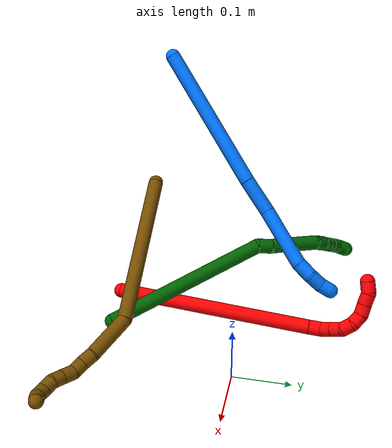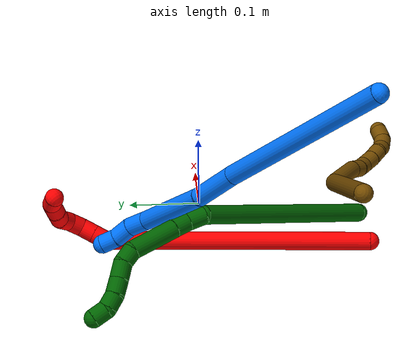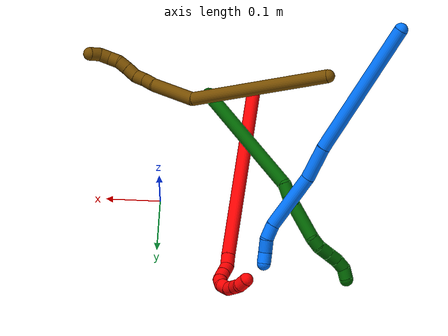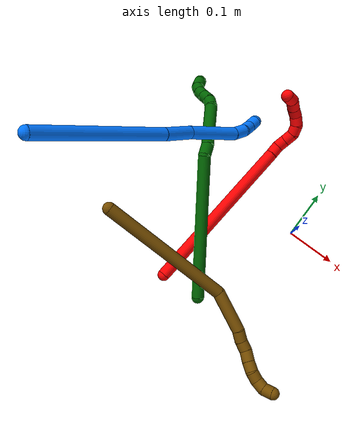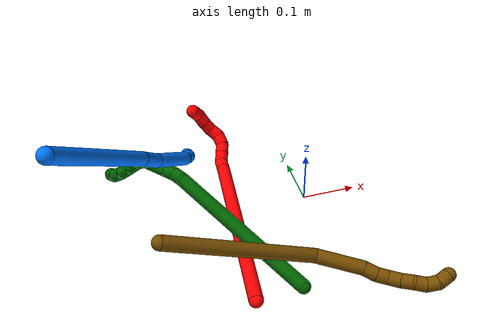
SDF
<sdf version="1.7">
 <world name="default">
  <model name="2">
   <static>0</static>
   <link name="2">
    <collision name="collision-cylinder-e_1_1_4">
     <pose>0.013882 0.130103 -0.106642 -2.25742 0.082336 -0.173611</pose>
     <geometry><cylinder><radius>0.0125</radius><length>0.337592</length></cylinder></geometry>
     <surface>
      <friction><ode><mu>1.16</mu><mu2>1.16</mu2><slip1>0</slip1><slip2>0</slip2></ode></friction>
      <contact><ode><kp>1e+06</kp><kd>1</kd><max_vel>0</max_vel><min_depth>0.001</min_depth></ode></contact>
     </surface>
    </collision>
    <visual name="visual-cylinder-e_1_1_4">
     <pose>0.013882 0.130103 -0.106642 -2.25742 0.082336 -0.173611</pose>
     <geometry><cylinder><radius>0.0125</radius><length>0.337592</length></cylinder></geometry>
     <material><ambient>1 0 0 1</ambient></material>
    </visual>
    <collision name="collision-cylinder-e_2_4_5">
     <pose>0.028958 0.269001 -0.219979 -2.22136 0.10755 -0.216372</pose>
     <geometry><cylinder><radius>0.0125</radius><length>0.022235</length></cylinder></geometry>
     <surface>
      <friction><ode><mu>1.16</mu><mu2>1.16</mu2><slip1>0</slip1><slip2>0</slip2></ode></friction>
      <contact><ode><kp>1e+06</kp><kd>1</kd><max_vel>0</max_vel><min_depth>0.001</min_depth></ode></contact>
     </surface>
    </collision>
    <visual name="visual-cylinder-e_2_4_5">
     <pose>0.028958 0.269001 -0.219979 -2.22136 0.10755 -0.216372</pose>
     <geometry><cylinder><radius>0.0125</radius><length>0.022235</length></cylinder></geometry>
     <material><ambient>1 0 0 1</ambient></material>
    </visual>
    <collision name="collision-cylinder-e_3_5_6">
     <pose>0.032056 0.281694 -0.235747 -2.73589 0.190541 -0.869856</pose>
     <geometry><cylinder><radius>0.0125</radius><length>0.020113</length></cylinder></geometry>
     <surface>
      <friction><ode><mu>1.16</mu><mu2>1.16</mu2><slip1>0</slip1><slip2>0</slip2></ode></friction>
      <contact><ode><kp>1e+06</kp><kd>1</kd><max_vel>0</max_vel><min_depth>0.001</min_depth></ode></contact>
     </surface>
    </collision>
    <visual name="visual-cylinder-e_3_5_6">
     <pose>0.032056 0.281694 -0.235747 -2.73589 0.190541 -0.869856</pose>
     <geometry><cylinder><radius>0.0125</radius><length>0.020113</length></cylinder></geometry>
     <material><ambient>1 0 0 1</ambient></material>
    </visual>
    <collision name="collision-cylinder-e_4_6_7">
     <pose>0.035963 0.28949 -0.253838 -2.73352 0.201073 -0.907237</pose>
     <geometry><cylinder><radius>0.0125</radius><length>0.020053</length></cylinder></geometry>
     <surface>
      <friction><ode><mu>1.16</mu><mu2>1.16</mu2><slip1>0</slip1><slip2>0</slip2></ode></friction>
      <contact><ode><kp>1e+06</kp><kd>1</kd><max_vel>0</max_vel><min_depth>0.001</min_depth></ode></contact>
     </surface>
    </collision>
    <visual name="visual-cylinder-e_4_6_7">
     <pose>0.035963 0.28949 -0.253838 -2.73352 0.201073 -0.907237</pose>
     <geometry><cylinder><radius>0.0125</radius><length>0.020053</length></cylinder></geometry>
     <material><ambient>1 0 0 1</ambient></material>
    </visual>
    <collision name="collision-cylinder-e_5_7_8">
     <pose>0.044314 0.297583 -0.269345 -2.56784 0.687741 -1.76338</pose>
     <geometry><cylinder><radius>0.0125</radius><length>0.020001</length></cylinder></geometry>
     <surface>
      <friction><ode><mu>1.16</mu><mu2>1.16</mu2><slip1>0</slip1><slip2>0</slip2></ode></friction>
      <contact><ode><kp>1e+06</kp><kd>1</kd><max_vel>0</max_vel><min_depth>0.001</min_depth></ode></contact>
     </surface>
    </collision>
    <visual name="visual-cylinder-e_5_7_8">
     <pose>0.044314 0.297583 -0.269345 -2.56784 0.687741 -1.76338</pose>
     <geometry><cylinder><radius>0.0125</radius><length>0.020001</length></cylinder></geometry>
     <material><ambient>1 0 0 1</ambient></material>
    </visual>
    <collision name="collision-cylinder-e_6_8_9">
     <pose>0.059586 0.305675 -0.278121 -2.10133 1.10209 -1.6412</pose>
     <geometry><cylinder><radius>0.0125</radius><length>0.020005</length></cylinder></geometry>
     <surface>
      <friction><ode><mu>1.16</mu><mu2>1.16</mu2><slip1>0</slip1><slip2>0</slip2></ode></friction>
      <contact><ode><kp>1e+06</kp><kd>1</kd><max_vel>0</max_vel><min_depth>0.001</min_depth></ode></contact>
     </surface>
    </collision>
    <visual name="visual-cylinder-e_6_8_9">
     <pose>0.059586 0.305675 -0.278121 -2.10133 1.10209 -1.6412</pose>
     <geometry><cylinder><radius>0.0125</radius><length>0.020005</length></cylinder></geometry>
     <material><ambient>1 0 0 1</ambient></material>
    </visual>
    <collision name="collision-cylinder-e_7_9_10">
     <pose>0.078252 0.308703 -0.282489 2.74596 1.34328 2.6476</pose>
     <geometry><cylinder><radius>0.0125</radius><length>0.02</length></cylinder></geometry>
     <surface>
      <friction><ode><mu>1.16</mu><mu2>1.16</mu2><slip1>0</slip1><slip2>0</slip2></ode></friction>
      <contact><ode><kp>1e+06</kp><kd>1</kd><max_vel>0</max_vel><min_depth>0.001</min_depth></ode></contact>
     </surface>
    </collision>
    <visual name="visual-cylinder-e_7_9_10">
     <pose>0.078252 0.308703 -0.282489 2.74596 1.34328 2.6476</pose>
     <geometry><cylinder><radius>0.0125</radius><length>0.02</length></cylinder></geometry>
     <material><ambient>1 0 0 1</ambient></material>
    </visual>
    <collision name="collision-cylinder-e_8_10_11">
     <pose>0.097389 0.30676 -0.287824 2.82291 1.22113 2.69011</pose>
     <geometry><cylinder><radius>0.0125</radius><length>0.02</length></cylinder></geometry>
     <surface>
      <friction><ode><mu>1.16</mu><mu2>1.16</mu2><slip1>0</slip1><slip2>0</slip2></ode></friction>
      <contact><ode><kp>1e+06</kp><kd>1</kd><max_vel>0</max_vel><min_depth>0.001</min_depth></ode></contact>
     </surface>
    </collision>
    <visual name="visual-cylinder-e_8_10_11">
     <pose>0.097389 0.30676 -0.287824 2.82291 1.22113 2.69011</pose>
     <geometry><cylinder><radius>0.0125</radius><length>0.02</length></cylinder></geometry>
     <material><ambient>1 0 0 1</ambient></material>
    </visual>
    <collision name="collision-cylinder-e_9_11_2">
     <pose>0.115936 0.301713 -0.290403 1.40278 1.15589 1.0071</pose>
     <geometry><cylinder><radius>0.0125</radius><length>0.02</length></cylinder></geometry>
     <surface>
      <friction><ode><mu>1.16</mu><mu2>1.16</mu2><slip1>0</slip1><slip2>0</slip2></ode></friction>
      <contact><ode><kp>1e+06</kp><kd>1</kd><max_vel>0</max_vel><min_depth>0.001</min_depth></ode></contact>
     </surface>
    </collision>
    <visual name="visual-cylinder-e_9_11_2">
     <pose>0.115936 0.301713 -0.290403 1.40278 1.15589 1.0071</pose>
     <geometry><cylinder><radius>0.0125</radius><length>0.02</length></cylinder></geometry>
     <material><ambient>1 0 0 1</ambient></material>
    </visual>
    <collision name="collision-sphere-2">
     <pose>0.125087 0.297738 -0.289729 0 -0 0</pose>
     <geometry><sphere><radius>0.0125</radius></sphere></geometry>
     <surface>
      <friction><ode><mu>1.16</mu><mu2>1.16</mu2><slip1>0</slip1><slip2>0</slip2></ode></friction>
      <contact><ode><kp>1e+06</kp><kd>1</kd><max_vel>0</max_vel><min_depth>0.001</min_depth></ode></contact>
     </surface>
    </collision>
    <visual name="visual-sphere-2">
     <pose>0.125087 0.297738 -0.289729 0 -0 0</pose>
     <geometry><sphere><radius>0.0125</radius></sphere></geometry>
     <material><ambient>1 0 0 1</ambient></material>
    </visual>
    <collision name="collision-sphere-11">
     <pose>0.106784 0.305687 -0.291077 0 -0 0</pose>
     <geometry><sphere><radius>0.0125</radius></sphere></geometry>
     <surface>
      <friction><ode><mu>1.16</mu><mu2>1.16</mu2><slip1>0</slip1><slip2>0</slip2></ode></friction>
      <contact><ode><kp>1e+06</kp><kd>1</kd><max_vel>0</max_vel><min_depth>0.001</min_depth></ode></contact>
     </surface>
    </collision>
    <visual name="visual-sphere-11">
     <pose>0.106784 0.305687 -0.291077 0 -0 0</pose>
     <geometry><sphere><radius>0.0125</radius></sphere></geometry>
     <material><ambient>1 0 0 1</ambient></material>
    </visual>
    <collision name="collision-sphere-10">
     <pose>0.087995 0.307834 -0.28457 0 -0 0</pose>
     <geometry><sphere><radius>0.0125</radius></sphere></geometry>
     <surface>
      <friction><ode><mu>1.16</mu><mu2>1.16</mu2><slip1>0</slip1><slip2>0</slip2></ode></friction>
      <contact><ode><kp>1e+06</kp><kd>1</kd><max_vel>0</max_vel><min_depth>0.001</min_depth></ode></contact>
     </surface>
    </collision>
    <visual name="visual-sphere-10">
     <pose>0.087995 0.307834 -0.28457 0 -0 0</pose>
     <geometry><sphere><radius>0.0125</radius></sphere></geometry>
     <material><ambient>1 0 0 1</ambient></material>
    </visual>
    <collision name="collision-sphere-9">
     <pose>0.06851 0.309572 -0.280408 0 -0 0</pose>
     <geometry><sphere><radius>0.0125</radius></sphere></geometry>
     <surface>
      <friction><ode><mu>1.16</mu><mu2>1.16</mu2><slip1>0</slip1><slip2>0</slip2></ode></friction>
      <contact><ode><kp>1e+06</kp><kd>1</kd><max_vel>0</max_vel><min_depth>0.001</min_depth></ode></contact>
     </surface>
    </collision>
    <visual name="visual-sphere-9">
     <pose>0.06851 0.309572 -0.280408 0 -0 0</pose>
     <geometry><sphere><radius>0.0125</radius></sphere></geometry>
     <material><ambient>1 0 0 1</ambient></material>
    </visual>
    <collision name="collision-sphere-4">
     <pose>0.027765 0.260206 -0.213285 0 -0 0</pose>
     <geometry><sphere><radius>0.0125</radius></sphere></geometry>
     <surface>
      <friction><ode><mu>1.16</mu><mu2>1.16</mu2><slip1>0</slip1><slip2>0</slip2></ode></friction>
      <contact><ode><kp>1e+06</kp><kd>1</kd><max_vel>0</max_vel><min_depth>0.001</min_depth></ode></contact>
     </surface>
    </collision>
    <visual name="visual-sphere-4">
     <pose>0.027765 0.260206 -0.213285 0 -0 0</pose>
     <geometry><sphere><radius>0.0125</radius></sphere></geometry>
     <material><ambient>1 0 0 1</ambient></material>
    </visual>
    <collision name="collision-sphere-1">
     <geometry><sphere><radius>0.0125</radius></sphere></geometry>
     <surface>
      <friction><ode><mu>1.16</mu><mu2>1.16</mu2><slip1>0</slip1><slip2>0</slip2></ode></friction>
      <contact><ode><kp>1e+06</kp><kd>1</kd><max_vel>0</max_vel><min_depth>0.001</min_depth></ode></contact>
     </surface>
    </collision>
    <visual name="visual-sphere-1">
     <geometry><sphere><radius>0.0125</radius></sphere></geometry>
     <material><ambient>1 0 0 1</ambient></material>
    </visual>
    <collision name="collision-sphere-8">
     <pose>0.050662 0.301778 -0.275835 0 -0 0</pose>
     <geometry><sphere><radius>0.0125</radius></sphere></geometry>
     <surface>
      <friction><ode><mu>1.16</mu><mu2>1.16</mu2><slip1>0</slip1><slip2>0</slip2></ode></friction>
      <contact><ode><kp>1e+06</kp><kd>1</kd><max_vel>0</max_vel><min_depth>0.001</min_depth></ode></contact>
     </surface>
    </collision>
    <visual name="visual-sphere-8">
     <pose>0.050662 0.301778 -0.275835 0 -0 0</pose>
     <geometry><sphere><radius>0.0125</radius></sphere></geometry>
     <material><ambient>1 0 0 1</ambient></material>
    </visual>
    <collision name="collision-sphere-5">
     <pose>0.030151 0.277797 -0.226674 0 -0 0</pose>
     <geometry><sphere><radius>0.0125</radius></sphere></geometry>
     <surface>
      <friction><ode><mu>1.16</mu><mu2>1.16</mu2><slip1>0</slip1><slip2>0</slip2></ode></friction>
      <contact><ode><kp>1e+06</kp><kd>1</kd><max_vel>0</max_vel><min_depth>0.001</min_depth></ode></contact>
     </surface>
    </collision>
    <visual name="visual-sphere-5">
     <pose>0.030151 0.277797 -0.226674 0 -0 0</pose>
     <geometry><sphere><radius>0.0125</radius></sphere></geometry>
     <material><ambient>1 0 0 1</ambient></material>
    </visual>
    <collision name="collision-sphere-6">
     <pose>0.033961 0.285592 -0.24482 0 -0 0</pose>
     <geometry><sphere><radius>0.0125</radius></sphere></geometry>
     <surface>
      <friction><ode><mu>1.16</mu><mu2>1.16</mu2><slip1>0</slip1><slip2>0</slip2></ode></friction>
      <contact><ode><kp>1e+06</kp><kd>1</kd><max_vel>0</max_vel><min_depth>0.001</min_depth></ode></contact>
     </surface>
    </collision>
    <visual name="visual-sphere-6">
     <pose>0.033961 0.285592 -0.24482 0 -0 0</pose>
     <geometry><sphere><radius>0.0125</radius></sphere></geometry>
     <material><ambient>1 0 0 1</ambient></material>
    </visual>
    <collision name="collision-sphere-7">
     <pose>0.037966 0.293389 -0.262855 0 -0 0</pose>
     <geometry><sphere><radius>0.0125</radius></sphere></geometry>
     <surface>
      <friction><ode><mu>1.16</mu><mu2>1.16</mu2><slip1>0</slip1><slip2>0</slip2></ode></friction>
      <contact><ode><kp>1e+06</kp><kd>1</kd><max_vel>0</max_vel><min_depth>0.001</min_depth></ode></contact>
     </surface>
    </collision>
    <visual name="visual-sphere-7">
     <pose>0.037966 0.293389 -0.262855 0 -0 0</pose>
     <geometry><sphere><radius>0.0125</radius></sphere></geometry>
     <material><ambient>1 0 0 1</ambient></material>
    </visual>
    <inertial>
     <pose>0.029213 0.183569 -0.15778 0 -0 0</pose>
     <mass>0.5</mass>
     <inertia>
      <ixx>0.002615</ixx>
      <ixy>0</ixy>
      <ixz>0</ixz>
      <iyy>-0.002506</iyy>
      <iyz>0</iyz>
      <izz>-0.002779</izz>
     </inertia>
    </inertial>
   </link>
   <pose>-0.159776 -0.225379 0.013421 -2.37621 -0.719041 2.94014</pose>
  </model>
  <model name="6">
   <static>0</static>
   <link name="6">
    <collision name="collision-cylinder-e_1_1_4">
     <pose>-0.121508 0.004158 0.072114 -0.057598 -1.03445 0.032773</pose>
     <geometry><cylinder><radius>0.0125</radius><length>0.282714</length></cylinder></geometry>
     <surface>
      <friction><ode><mu>1.16</mu><mu2>1.16</mu2><slip1>0</slip1><slip2>0</slip2></ode></friction>
      <contact><ode><kp>1e+06</kp><kd>1</kd><max_vel>0</max_vel><min_depth>0.001</min_depth></ode></contact>
     </surface>
    </collision>
    <visual name="visual-cylinder-e_1_1_4">
     <pose>-0.121508 0.004158 0.072114 -0.057598 -1.03445 0.032773</pose>
     <geometry><cylinder><radius>0.0125</radius><length>0.282714</length></cylinder></geometry>
     <material><ambient>0 0.392157 0.003922 1</ambient></material>
    </visual>
    <collision name="collision-cylinder-e_2_4_5">
     <pose>-0.249825 0.012646 0.153546 -0.434954 -0.585321 0.132967</pose>
     <geometry><cylinder><radius>0.0125</radius><length>0.024653</length></cylinder></geometry>
     <surface>
      <friction><ode><mu>1.16</mu><mu2>1.16</mu2><slip1>0</slip1><slip2>0</slip2></ode></friction>
      <contact><ode><kp>1e+06</kp><kd>1</kd><max_vel>0</max_vel><min_depth>0.001</min_depth></ode></contact>
     </surface>
    </collision>
    <visual name="visual-cylinder-e_2_4_5">
     <pose>-0.249825 0.012646 0.153546 -0.434954 -0.585321 0.132967</pose>
     <geometry><cylinder><radius>0.0125</radius><length>0.024653</length></cylinder></geometry>
     <material><ambient>0 0.392157 0.003922 1</ambient></material>
    </visual>
    <collision name="collision-cylinder-e_3_5_6">
     <pose>-0.263727 0.02152 0.169621 -0.592102 -0.716491 0.22741</pose>
     <geometry><cylinder><radius>0.0125</radius><length>0.021596</length></cylinder></geometry>
     <surface>
      <friction><ode><mu>1.16</mu><mu2>1.16</mu2><slip1>0</slip1><slip2>0</slip2></ode></friction>
      <contact><ode><kp>1e+06</kp><kd>1</kd><max_vel>0</max_vel><min_depth>0.001</min_depth></ode></contact>
     </surface>
    </collision>
    <visual name="visual-cylinder-e_3_5_6">
     <pose>-0.263727 0.02152 0.169621 -0.592102 -0.716491 0.22741</pose>
     <geometry><cylinder><radius>0.0125</radius><length>0.021596</length></cylinder></geometry>
     <material><ambient>0 0.392157 0.003922 1</ambient></material>
    </visual>
    <collision name="collision-cylinder-e_4_6_7">
     <pose>-0.291814 0.040211 0.196944 -0.602509 -0.699313 0.225633</pose>
     <geometry><cylinder><radius>0.0125</radius><length>0.065235</length></cylinder></geometry>
     <surface>
      <friction><ode><mu>1.16</mu><mu2>1.16</mu2><slip1>0</slip1><slip2>0</slip2></ode></friction>
      <contact><ode><kp>1e+06</kp><kd>1</kd><max_vel>0</max_vel><min_depth>0.001</min_depth></ode></contact>
     </surface>
    </collision>
    <visual name="visual-cylinder-e_4_6_7">
     <pose>-0.291814 0.040211 0.196944 -0.602509 -0.699313 0.225633</pose>
     <geometry><cylinder><radius>0.0125</radius><length>0.065235</length></cylinder></geometry>
     <material><ambient>0 0.392157 0.003922 1</ambient></material>
    </visual>
    <collision name="collision-cylinder-e_5_7_8">
     <pose>-0.317892 0.062173 0.221816 -1.0673 -0.517754 0.310409</pose>
     <geometry><cylinder><radius>0.0125</radius><length>0.020539</length></cylinder></geometry>
     <surface>
      <friction><ode><mu>1.16</mu><mu2>1.16</mu2><slip1>0</slip1><slip2>0</slip2></ode></friction>
      <contact><ode><kp>1e+06</kp><kd>1</kd><max_vel>0</max_vel><min_depth>0.001</min_depth></ode></contact>
     </surface>
    </collision>
    <visual name="visual-cylinder-e_5_7_8">
     <pose>-0.317892 0.062173 0.221816 -1.0673 -0.517754 0.310409</pose>
     <geometry><cylinder><radius>0.0125</radius><length>0.020539</length></cylinder></geometry>
     <material><ambient>0 0.392157 0.003922 1</ambient></material>
    </visual>
    <collision name="collision-cylinder-e_6_8_9">
     <pose>-0.327709 0.08091 0.227119 -1.47971 -0.407492 0.372822</pose>
     <geometry><cylinder><radius>0.0125</radius><length>0.023888</length></cylinder></geometry>
     <surface>
      <friction><ode><mu>1.16</mu><mu2>1.16</mu2><slip1>0</slip1><slip2>0</slip2></ode></friction>
      <contact><ode><kp>1e+06</kp><kd>1</kd><max_vel>0</max_vel><min_depth>0.001</min_depth></ode></contact>
     </surface>
    </collision>
    <visual name="visual-cylinder-e_6_8_9">
     <pose>-0.327709 0.08091 0.227119 -1.47971 -0.407492 0.372822</pose>
     <geometry><cylinder><radius>0.0125</radius><length>0.023888</length></cylinder></geometry>
     <material><ambient>0 0.392157 0.003922 1</ambient></material>
    </visual>
    <collision name="collision-cylinder-e_7_9_10">
     <pose>-0.336932 0.10141 0.229168 -1.46148 -0.435963 0.391946</pose>
     <geometry><cylinder><radius>0.0125</radius><length>0.021263</length></cylinder></geometry>
     <surface>
      <friction><ode><mu>1.16</mu><mu2>1.16</mu2><slip1>0</slip1><slip2>0</slip2></ode></friction>
      <contact><ode><kp>1e+06</kp><kd>1</kd><max_vel>0</max_vel><min_depth>0.001</min_depth></ode></contact>
     </surface>
    </collision>
    <visual name="visual-cylinder-e_7_9_10">
     <pose>-0.336932 0.10141 0.229168 -1.46148 -0.435963 0.391946</pose>
     <geometry><cylinder><radius>0.0125</radius><length>0.021263</length></cylinder></geometry>
     <material><ambient>0 0.392157 0.003922 1</ambient></material>
    </visual>
    <collision name="collision-cylinder-e_8_10_11">
     <pose>-0.345906 0.119303 0.23359 -1.18566 -0.463536 0.31534</pose>
     <geometry><cylinder><radius>0.0125</radius><length>0.02006</length></cylinder></geometry>
     <surface>
      <friction><ode><mu>1.16</mu><mu2>1.16</mu2><slip1>0</slip1><slip2>0</slip2></ode></friction>
      <contact><ode><kp>1e+06</kp><kd>1</kd><max_vel>0</max_vel><min_depth>0.001</min_depth></ode></contact>
     </surface>
    </collision>
    <visual name="visual-cylinder-e_8_10_11">
     <pose>-0.345906 0.119303 0.23359 -1.18566 -0.463536 0.31534</pose>
     <geometry><cylinder><radius>0.0125</radius><length>0.02006</length></cylinder></geometry>
     <material><ambient>0 0.392157 0.003922 1</ambient></material>
    </visual>
    <collision name="collision-cylinder-e_9_11_2">
     <pose>-0.353684 0.133284 0.244547 -0.641518 -0.334795 0.112163</pose>
     <geometry><cylinder><radius>0.0125</radius><length>0.020052</length></cylinder></geometry>
     <surface>
      <friction><ode><mu>1.16</mu><mu2>1.16</mu2><slip1>0</slip1><slip2>0</slip2></ode></friction>
      <contact><ode><kp>1e+06</kp><kd>1</kd><max_vel>0</max_vel><min_depth>0.001</min_depth></ode></contact>
     </surface>
    </collision>
    <visual name="visual-cylinder-e_9_11_2">
     <pose>-0.353684 0.133284 0.244547 -0.641518 -0.334795 0.112163</pose>
     <geometry><cylinder><radius>0.0125</radius><length>0.020052</length></cylinder></geometry>
     <material><ambient>0 0.392157 0.003922 1</ambient></material>
    </visual>
    <collision name="collision-sphere-2">
     <pose>-0.356978 0.138951 0.252133 0 -0 0</pose>
     <geometry><sphere><radius>0.0125</radius></sphere></geometry>
     <surface>
      <friction><ode><mu>1.16</mu><mu2>1.16</mu2><slip1>0</slip1><slip2>0</slip2></ode></friction>
      <contact><ode><kp>1e+06</kp><kd>1</kd><max_vel>0</max_vel><min_depth>0.001</min_depth></ode></contact>
     </surface>
    </collision>
    <visual name="visual-sphere-2">
     <pose>-0.356978 0.138951 0.252133 0 -0 0</pose>
     <geometry><sphere><radius>0.0125</radius></sphere></geometry>
     <material><ambient>0 0.392157 0.003922 1</ambient></material>
    </visual>
    <collision name="collision-sphere-11">
     <pose>-0.35039 0.127618 0.23696 0 -0 0</pose>
     <geometry><sphere><radius>0.0125</radius></sphere></geometry>
     <surface>
      <friction><ode><mu>1.16</mu><mu2>1.16</mu2><slip1>0</slip1><slip2>0</slip2></ode></friction>
      <contact><ode><kp>1e+06</kp><kd>1</kd><max_vel>0</max_vel><min_depth>0.001</min_depth></ode></contact>
     </surface>
    </collision>
    <visual name="visual-sphere-11">
     <pose>-0.35039 0.127618 0.23696 0 -0 0</pose>
     <geometry><sphere><radius>0.0125</radius></sphere></geometry>
     <material><ambient>0 0.392157 0.003922 1</ambient></material>
    </visual>
    <collision name="collision-sphere-10">
     <pose>-0.341421 0.110989 0.230219 0 -0 0</pose>
     <geometry><sphere><radius>0.0125</radius></sphere></geometry>
     <surface>
      <friction><ode><mu>1.16</mu><mu2>1.16</mu2><slip1>0</slip1><slip2>0</slip2></ode></friction>
      <contact><ode><kp>1e+06</kp><kd>1</kd><max_vel>0</max_vel><min_depth>0.001</min_depth></ode></contact>
     </surface>
    </collision>
    <visual name="visual-sphere-10">
     <pose>-0.341421 0.110989 0.230219 0 -0 0</pose>
     <geometry><sphere><radius>0.0125</radius></sphere></geometry>
     <material><ambient>0 0.392157 0.003922 1</ambient></material>
    </visual>
    <collision name="collision-sphere-9">
     <pose>-0.332442 0.09183 0.228117 0 -0 0</pose>
     <geometry><sphere><radius>0.0125</radius></sphere></geometry>
     <surface>
      <friction><ode><mu>1.16</mu><mu2>1.16</mu2><slip1>0</slip1><slip2>0</slip2></ode></friction>
      <contact><ode><kp>1e+06</kp><kd>1</kd><max_vel>0</max_vel><min_depth>0.001</min_depth></ode></contact>
     </surface>
    </collision>
    <visual name="visual-sphere-9">
     <pose>-0.332442 0.09183 0.228117 0 -0 0</pose>
     <geometry><sphere><radius>0.0125</radius></sphere></geometry>
     <material><ambient>0 0.392157 0.003922 1</ambient></material>
    </visual>
    <collision name="collision-sphere-4">
     <pose>-0.243015 0.008316 0.144228 0 -0 0</pose>
     <geometry><sphere><radius>0.0125</radius></sphere></geometry>
     <surface>
      <friction><ode><mu>1.16</mu><mu2>1.16</mu2><slip1>0</slip1><slip2>0</slip2></ode></friction>
      <contact><ode><kp>1e+06</kp><kd>1</kd><max_vel>0</max_vel><min_depth>0.001</min_depth></ode></contact>
     </surface>
    </collision>
    <visual name="visual-sphere-4">
     <pose>-0.243015 0.008316 0.144228 0 -0 0</pose>
     <geometry><sphere><radius>0.0125</radius></sphere></geometry>
     <material><ambient>0 0.392157 0.003922 1</ambient></material>
    </visual>
    <collision name="collision-sphere-1">
     <geometry><sphere><radius>0.0125</radius></sphere></geometry>
     <surface>
      <friction><ode><mu>1.16</mu><mu2>1.16</mu2><slip1>0</slip1><slip2>0</slip2></ode></friction>
      <contact><ode><kp>1e+06</kp><kd>1</kd><max_vel>0</max_vel><min_depth>0.001</min_depth></ode></contact>
     </surface>
    </collision>
    <visual name="visual-sphere-1">
     <geometry><sphere><radius>0.0125</radius></sphere></geometry>
     <material><ambient>0 0.392157 0.003922 1</ambient></material>
    </visual>
    <collision name="collision-sphere-8">
     <pose>-0.322975 0.069989 0.226122 0 -0 0</pose>
     <geometry><sphere><radius>0.0125</radius></sphere></geometry>
     <surface>
      <friction><ode><mu>1.16</mu><mu2>1.16</mu2><slip1>0</slip1><slip2>0</slip2></ode></friction>
      <contact><ode><kp>1e+06</kp><kd>1</kd><max_vel>0</max_vel><min_depth>0.001</min_depth></ode></contact>
     </surface>
    </collision>
    <visual name="visual-sphere-8">
     <pose>-0.322975 0.069989 0.226122 0 -0 0</pose>
     <geometry><sphere><radius>0.0125</radius></sphere></geometry>
     <material><ambient>0 0.392157 0.003922 1</ambient></material>
    </visual>
    <collision name="collision-sphere-5">
     <pose>-0.256635 0.016975 0.162864 0 -0 0</pose>
     <geometry><sphere><radius>0.0125</radius></sphere></geometry>
     <surface>
      <friction><ode><mu>1.16</mu><mu2>1.16</mu2><slip1>0</slip1><slip2>0</slip2></ode></friction>
      <contact><ode><kp>1e+06</kp><kd>1</kd><max_vel>0</max_vel><min_depth>0.001</min_depth></ode></contact>
     </surface>
    </collision>
    <visual name="visual-sphere-5">
     <pose>-0.256635 0.016975 0.162864 0 -0 0</pose>
     <geometry><sphere><radius>0.0125</radius></sphere></geometry>
     <material><ambient>0 0.392157 0.003922 1</ambient></material>
    </visual>
    <collision name="collision-sphere-6">
     <pose>-0.270818 0.026065 0.176378 0 -0 0</pose>
     <geometry><sphere><radius>0.0125</radius></sphere></geometry>
     <surface>
      <friction><ode><mu>1.16</mu><mu2>1.16</mu2><slip1>0</slip1><slip2>0</slip2></ode></friction>
      <contact><ode><kp>1e+06</kp><kd>1</kd><max_vel>0</max_vel><min_depth>0.001</min_depth></ode></contact>
     </surface>
    </collision>
    <visual name="visual-sphere-6">
     <pose>-0.270818 0.026065 0.176378 0 -0 0</pose>
     <geometry><sphere><radius>0.0125</radius></sphere></geometry>
     <material><ambient>0 0.392157 0.003922 1</ambient></material>
    </visual>
    <collision name="collision-sphere-7">
     <pose>-0.312809 0.054357 0.21751 0 -0 0</pose>
     <geometry><sphere><radius>0.0125</radius></sphere></geometry>
     <surface>
      <friction><ode><mu>1.16</mu><mu2>1.16</mu2><slip1>0</slip1><slip2>0</slip2></ode></friction>
      <contact><ode><kp>1e+06</kp><kd>1</kd><max_vel>0</max_vel><min_depth>0.001</min_depth></ode></contact>
     </surface>
    </collision>
    <visual name="visual-sphere-7">
     <pose>-0.312809 0.054357 0.21751 0 -0 0</pose>
     <geometry><sphere><radius>0.0125</radius></sphere></geometry>
     <material><ambient>0 0.392157 0.003922 1</ambient></material>
    </visual>
    <inertial>
     <pose>-0.201591 0.030014 0.130255 0 -0 0</pose>
     <mass>0.5</mass>
     <inertia>
      <ixx>0.001008</ixx>
      <ixy>0</ixy>
      <ixz>0</ixz>
      <iyy>0.001973</iyy>
      <iyz>0</iyz>
      <izz>0.001595</izz>
     </inertia>
    </inertial>
   </link>
   <pose>-0.077238 -0.221076 0.015564 -1.7593 0.477765 -0.441076</pose>
  </model>
  <model name="12">
   <static>0</static>
   <link name="12">
    <collision name="collision-cylinder-e_1_1_4">
     <pose>0.068559 -0.040346 0.108831 0.355013 0.533531 0.097971</pose>
     <geometry><cylinder><radius>0.0125</radius><length>0.26961</length></cylinder></geometry>
     <surface>
      <friction><ode><mu>1.16</mu><mu2>1.16</mu2><slip1>0</slip1><slip2>0</slip2></ode></friction>
      <contact><ode><kp>1e+06</kp><kd>1</kd><max_vel>0</max_vel><min_depth>0.001</min_depth></ode></contact>
     </surface>
    </collision>
    <visual name="visual-cylinder-e_1_1_4">
     <pose>0.068559 -0.040346 0.108831 0.355013 0.533531 0.097971</pose>
     <geometry><cylinder><radius>0.0125</radius><length>0.26961</length></cylinder></geometry>
     <material><ambient>0.466667 0.301961 0 1</ambient></material>
    </visual>
    <collision name="collision-cylinder-e_2_4_5">
     <pose>0.154791 -0.074076 0.255205 -0.174429 0.434121 -0.038561</pose>
     <geometry><cylinder><radius>0.0125</radius><length>0.084036</length></cylinder></geometry>
     <surface>
      <friction><ode><mu>1.16</mu><mu2>1.16</mu2><slip1>0</slip1><slip2>0</slip2></ode></friction>
      <contact><ode><kp>1e+06</kp><kd>1</kd><max_vel>0</max_vel><min_depth>0.001</min_depth></ode></contact>
     </surface>
    </collision>
    <visual name="visual-cylinder-e_2_4_5">
     <pose>0.154791 -0.074076 0.255205 -0.174429 0.434121 -0.038561</pose>
     <geometry><cylinder><radius>0.0125</radius><length>0.084036</length></cylinder></geometry>
     <material><ambient>0.466667 0.301961 0 1</ambient></material>
    </visual>
    <collision name="collision-cylinder-e_3_5_6">
     <pose>0.174815 -0.064824 0.303568 -0.239011 0.208054 -0.025072</pose>
     <geometry><cylinder><radius>0.0125</radius><length>0.022766</length></cylinder></geometry>
     <surface>
      <friction><ode><mu>1.16</mu><mu2>1.16</mu2><slip1>0</slip1><slip2>0</slip2></ode></friction>
      <contact><ode><kp>1e+06</kp><kd>1</kd><max_vel>0</max_vel><min_depth>0.001</min_depth></ode></contact>
     </surface>
    </collision>
    <visual name="visual-cylinder-e_3_5_6">
     <pose>0.174815 -0.064824 0.303568 -0.239011 0.208054 -0.025072</pose>
     <geometry><cylinder><radius>0.0125</radius><length>0.022766</length></cylinder></geometry>
     <material><ambient>0.466667 0.301961 0 1</ambient></material>
    </visual>
    <collision name="collision-cylinder-e_4_6_7">
     <pose>0.181514 -0.06019 0.323659 -0.212182 0.42989 -0.046489</pose>
     <geometry><cylinder><radius>0.0125</radius><length>0.020864</length></cylinder></geometry>
     <surface>
      <friction><ode><mu>1.16</mu><mu2>1.16</mu2><slip1>0</slip1><slip2>0</slip2></ode></friction>
      <contact><ode><kp>1e+06</kp><kd>1</kd><max_vel>0</max_vel><min_depth>0.001</min_depth></ode></contact>
     </surface>
    </collision>
    <visual name="visual-cylinder-e_4_6_7">
     <pose>0.181514 -0.06019 0.323659 -0.212182 0.42989 -0.046489</pose>
     <geometry><cylinder><radius>0.0125</radius><length>0.020864</length></cylinder></geometry>
     <material><ambient>0.466667 0.301961 0 1</ambient></material>
    </visual>
    <collision name="collision-cylinder-e_5_7_8">
     <pose>0.190382 -0.052187 0.341423 -0.615493 0.409843 -0.131929</pose>
     <geometry><cylinder><radius>0.0125</radius><length>0.022686</length></cylinder></geometry>
     <surface>
      <friction><ode><mu>1.16</mu><mu2>1.16</mu2><slip1>0</slip1><slip2>0</slip2></ode></friction>
      <contact><ode><kp>1e+06</kp><kd>1</kd><max_vel>0</max_vel><min_depth>0.001</min_depth></ode></contact>
     </surface>
    </collision>
    <visual name="visual-cylinder-e_5_7_8">
     <pose>0.190382 -0.052187 0.341423 -0.615493 0.409843 -0.131929</pose>
     <geometry><cylinder><radius>0.0125</radius><length>0.022686</length></cylinder></geometry>
     <material><ambient>0.466667 0.301961 0 1</ambient></material>
    </visual>
    <collision name="collision-cylinder-e_6_8_9">
     <pose>0.199803 -0.041072 0.356991 -0.625433 0.511843 -0.1688</pose>
     <geometry><cylinder><radius>0.0125</radius><length>0.020014</length></cylinder></geometry>
     <surface>
      <friction><ode><mu>1.16</mu><mu2>1.16</mu2><slip1>0</slip1><slip2>0</slip2></ode></friction>
      <contact><ode><kp>1e+06</kp><kd>1</kd><max_vel>0</max_vel><min_depth>0.001</min_depth></ode></contact>
     </surface>
    </collision>
    <visual name="visual-cylinder-e_6_8_9">
     <pose>0.199803 -0.041072 0.356991 -0.625433 0.511843 -0.1688</pose>
     <geometry><cylinder><radius>0.0125</radius><length>0.020014</length></cylinder></geometry>
     <material><ambient>0.466667 0.301961 0 1</ambient></material>
    </visual>
    <collision name="collision-cylinder-e_7_9_10">
     <pose>0.209445 -0.034075 0.372671 -0.216094 0.493628 -0.054644</pose>
     <geometry><cylinder><radius>0.0125</radius><length>0.020013</length></cylinder></geometry>
     <surface>
      <friction><ode><mu>1.16</mu><mu2>1.16</mu2><slip1>0</slip1><slip2>0</slip2></ode></friction>
      <contact><ode><kp>1e+06</kp><kd>1</kd><max_vel>0</max_vel><min_depth>0.001</min_depth></ode></contact>
     </surface>
    </collision>
    <visual name="visual-cylinder-e_7_9_10">
     <pose>0.209445 -0.034075 0.372671 -0.216094 0.493628 -0.054644</pose>
     <geometry><cylinder><radius>0.0125</radius><length>0.020013</length></cylinder></geometry>
     <material><ambient>0.466667 0.301961 0 1</ambient></material>
    </visual>
    <collision name="collision-cylinder-e_8_10_11">
     <pose>0.221794 -0.029419 0.387154 -0.440069 0.86409 -0.205528</pose>
     <geometry><cylinder><radius>0.0125</radius><length>0.020005</length></cylinder></geometry>
     <surface>
      <friction><ode><mu>1.16</mu><mu2>1.16</mu2><slip1>0</slip1><slip2>0</slip2></ode></friction>
      <contact><ode><kp>1e+06</kp><kd>1</kd><max_vel>0</max_vel><min_depth>0.001</min_depth></ode></contact>
     </surface>
    </collision>
    <visual name="visual-cylinder-e_8_10_11">
     <pose>0.221794 -0.029419 0.387154 -0.440069 0.86409 -0.205528</pose>
     <geometry><cylinder><radius>0.0125</radius><length>0.020005</length></cylinder></geometry>
     <material><ambient>0.466667 0.301961 0 1</ambient></material>
    </visual>
    <collision name="collision-cylinder-e_9_11_2">
     <pose>0.239111 -0.02624 0.395397 -0.172183 1.32826 -0.134904</pose>
     <geometry><cylinder><radius>0.0125</radius><length>0.020007</length></cylinder></geometry>
     <surface>
      <friction><ode><mu>1.16</mu><mu2>1.16</mu2><slip1>0</slip1><slip2>0</slip2></ode></friction>
      <contact><ode><kp>1e+06</kp><kd>1</kd><max_vel>0</max_vel><min_depth>0.001</min_depth></ode></contact>
     </surface>
    </collision>
    <visual name="visual-cylinder-e_9_11_2">
     <pose>0.239111 -0.02624 0.395397 -0.172183 1.32826 -0.134904</pose>
     <geometry><cylinder><radius>0.0125</radius><length>0.020007</length></cylinder></geometry>
     <material><ambient>0.466667 0.301961 0 1</ambient></material>
    </visual>
    <collision name="collision-sphere-2">
     <pose>0.248821 -0.025829 0.397764 0 -0 0</pose>
     <geometry><sphere><radius>0.0125</radius></sphere></geometry>
     <surface>
      <friction><ode><mu>1.16</mu><mu2>1.16</mu2><slip1>0</slip1><slip2>0</slip2></ode></friction>
      <contact><ode><kp>1e+06</kp><kd>1</kd><max_vel>0</max_vel><min_depth>0.001</min_depth></ode></contact>
     </surface>
    </collision>
    <visual name="visual-sphere-2">
     <pose>0.248821 -0.025829 0.397764 0 -0 0</pose>
     <geometry><sphere><radius>0.0125</radius></sphere></geometry>
     <material><ambient>0.466667 0.301961 0 1</ambient></material>
    </visual>
    <collision name="collision-sphere-11">
     <pose>0.2294 -0.026652 0.39303 0 -0 0</pose>
     <geometry><sphere><radius>0.0125</radius></sphere></geometry>
     <surface>
      <friction><ode><mu>1.16</mu><mu2>1.16</mu2><slip1>0</slip1><slip2>0</slip2></ode></friction>
      <contact><ode><kp>1e+06</kp><kd>1</kd><max_vel>0</max_vel><min_depth>0.001</min_depth></ode></contact>
     </surface>
    </collision>
    <visual name="visual-sphere-11">
     <pose>0.2294 -0.026652 0.39303 0 -0 0</pose>
     <geometry><sphere><radius>0.0125</radius></sphere></geometry>
     <material><ambient>0.466667 0.301961 0 1</ambient></material>
    </visual>
    <collision name="collision-sphere-10">
     <pose>0.214187 -0.032186 0.381278 0 -0 0</pose>
     <geometry><sphere><radius>0.0125</radius></sphere></geometry>
     <surface>
      <friction><ode><mu>1.16</mu><mu2>1.16</mu2><slip1>0</slip1><slip2>0</slip2></ode></friction>
      <contact><ode><kp>1e+06</kp><kd>1</kd><max_vel>0</max_vel><min_depth>0.001</min_depth></ode></contact>
     </surface>
    </collision>
    <visual name="visual-sphere-10">
     <pose>0.214187 -0.032186 0.381278 0 -0 0</pose>
     <geometry><sphere><radius>0.0125</radius></sphere></geometry>
     <material><ambient>0.466667 0.301961 0 1</ambient></material>
    </visual>
    <collision name="collision-sphere-9">
     <pose>0.204704 -0.035965 0.364064 0 -0 0</pose>
     <geometry><sphere><radius>0.0125</radius></sphere></geometry>
     <surface>
      <friction><ode><mu>1.16</mu><mu2>1.16</mu2><slip1>0</slip1><slip2>0</slip2></ode></friction>
      <contact><ode><kp>1e+06</kp><kd>1</kd><max_vel>0</max_vel><min_depth>0.001</min_depth></ode></contact>
     </surface>
    </collision>
    <visual name="visual-sphere-9">
     <pose>0.204704 -0.035965 0.364064 0 -0 0</pose>
     <geometry><sphere><radius>0.0125</radius></sphere></geometry>
     <material><ambient>0.466667 0.301961 0 1</ambient></material>
    </visual>
    <collision name="collision-sphere-4">
     <pose>0.137117 -0.080692 0.217663 0 -0 0</pose>
     <geometry><sphere><radius>0.0125</radius></sphere></geometry>
     <surface>
      <friction><ode><mu>1.16</mu><mu2>1.16</mu2><slip1>0</slip1><slip2>0</slip2></ode></friction>
      <contact><ode><kp>1e+06</kp><kd>1</kd><max_vel>0</max_vel><min_depth>0.001</min_depth></ode></contact>
     </surface>
    </collision>
    <visual name="visual-sphere-4">
     <pose>0.137117 -0.080692 0.217663 0 -0 0</pose>
     <geometry><sphere><radius>0.0125</radius></sphere></geometry>
     <material><ambient>0.466667 0.301961 0 1</ambient></material>
    </visual>
    <collision name="collision-sphere-1">
     <geometry><sphere><radius>0.0125</radius></sphere></geometry>
     <surface>
      <friction><ode><mu>1.16</mu><mu2>1.16</mu2><slip1>0</slip1><slip2>0</slip2></ode></friction>
      <contact><ode><kp>1e+06</kp><kd>1</kd><max_vel>0</max_vel><min_depth>0.001</min_depth></ode></contact>
     </surface>
    </collision>
    <visual name="visual-sphere-1">
     <geometry><sphere><radius>0.0125</radius></sphere></geometry>
     <material><ambient>0.466667 0.301961 0 1</ambient></material>
    </visual>
    <collision name="collision-sphere-8">
     <pose>0.194901 -0.04618 0.349918 0 -0 0</pose>
     <geometry><sphere><radius>0.0125</radius></sphere></geometry>
     <surface>
      <friction><ode><mu>1.16</mu><mu2>1.16</mu2><slip1>0</slip1><slip2>0</slip2></ode></friction>
      <contact><ode><kp>1e+06</kp><kd>1</kd><max_vel>0</max_vel><min_depth>0.001</min_depth></ode></contact>
     </surface>
    </collision>
    <visual name="visual-sphere-8">
     <pose>0.194901 -0.04618 0.349918 0 -0 0</pose>
     <geometry><sphere><radius>0.0125</radius></sphere></geometry>
     <material><ambient>0.466667 0.301961 0 1</ambient></material>
    </visual>
    <collision name="collision-sphere-5">
     <pose>0.172464 -0.067461 0.292747 0 -0 0</pose>
     <geometry><sphere><radius>0.0125</radius></sphere></geometry>
     <surface>
      <friction><ode><mu>1.16</mu><mu2>1.16</mu2><slip1>0</slip1><slip2>0</slip2></ode></friction>
      <contact><ode><kp>1e+06</kp><kd>1</kd><max_vel>0</max_vel><min_depth>0.001</min_depth></ode></contact>
     </surface>
    </collision>
    <visual name="visual-sphere-5">
     <pose>0.172464 -0.067461 0.292747 0 -0 0</pose>
     <geometry><sphere><radius>0.0125</radius></sphere></geometry>
     <material><ambient>0.466667 0.301961 0 1</ambient></material>
    </visual>
    <collision name="collision-sphere-6">
     <pose>0.177167 -0.062187 0.314389 0 -0 0</pose>
     <geometry><sphere><radius>0.0125</radius></sphere></geometry>
     <surface>
      <friction><ode><mu>1.16</mu><mu2>1.16</mu2><slip1>0</slip1><slip2>0</slip2></ode></friction>
      <contact><ode><kp>1e+06</kp><kd>1</kd><max_vel>0</max_vel><min_depth>0.001</min_depth></ode></contact>
     </surface>
    </collision>
    <visual name="visual-sphere-6">
     <pose>0.177167 -0.062187 0.314389 0 -0 0</pose>
     <geometry><sphere><radius>0.0125</radius></sphere></geometry>
     <material><ambient>0.466667 0.301961 0 1</ambient></material>
    </visual>
    <collision name="collision-sphere-7">
     <pose>0.185862 -0.058193 0.332929 0 -0 0</pose>
     <geometry><sphere><radius>0.0125</radius></sphere></geometry>
     <surface>
      <friction><ode><mu>1.16</mu><mu2>1.16</mu2><slip1>0</slip1><slip2>0</slip2></ode></friction>
      <contact><ode><kp>1e+06</kp><kd>1</kd><max_vel>0</max_vel><min_depth>0.001</min_depth></ode></contact>
     </surface>
    </collision>
    <visual name="visual-sphere-7">
     <pose>0.185862 -0.058193 0.332929 0 -0 0</pose>
     <geometry><sphere><radius>0.0125</radius></sphere></geometry>
     <material><ambient>0.466667 0.301961 0 1</ambient></material>
    </visual>
    <inertial>
     <pose>0.121978 -0.047271 0.204913 0 -0 0</pose>
     <mass>0.5</mass>
     <inertia>
      <ixx>0.00162</ixx>
      <ixy>0</ixy>
      <ixz>0</ixz>
      <iyy>0.001758</iyy>
      <iyz>0</iyz>
      <izz>-0.000352</izz>
     </inertia>
    </inertial>
   </link>
   <pose>-0.297419 -0.190959 0.154566 2.29728 -0.543461 0.45737</pose>
  </model>
  <model name="14">
   <static>0</static>
   <link name="14">
    <collision name="collision-cylinder-e_1_1_4">
     <pose>0.013136 0.006273 -0.127264 -3.09234 0.102732 -2.24809</pose>
     <geometry><cylinder><radius>0.0125</radius><length>0.256189</length></cylinder></geometry>
     <surface>
      <friction><ode><mu>1.16</mu><mu2>1.16</mu2><slip1>0</slip1><slip2>0</slip2></ode></friction>
      <contact><ode><kp>1e+06</kp><kd>1</kd><max_vel>0</max_vel><min_depth>0.001</min_depth></ode></contact>
     </surface>
    </collision>
    <visual name="visual-cylinder-e_1_1_4">
     <pose>0.013136 0.006273 -0.127264 -3.09234 0.102732 -2.24809</pose>
     <geometry><cylinder><radius>0.0125</radius><length>0.256189</length></cylinder></geometry>
     <material><ambient>0 0.462745 1 1</ambient></material>
    </visual>
    <collision name="collision-cylinder-e_2_4_5">
     <pose>0.026462 0.015325 -0.286105 -3.05377 0.00598 -0.135876</pose>
     <geometry><cylinder><radius>0.0125</radius><length>0.063398</length></cylinder></geometry>
     <surface>
      <friction><ode><mu>1.16</mu><mu2>1.16</mu2><slip1>0</slip1><slip2>0</slip2></ode></friction>
      <contact><ode><kp>1e+06</kp><kd>1</kd><max_vel>0</max_vel><min_depth>0.001</min_depth></ode></contact>
     </surface>
    </collision>
    <visual name="visual-cylinder-e_2_4_5">
     <pose>0.026462 0.015325 -0.286105 -3.05377 0.00598 -0.135876</pose>
     <geometry><cylinder><radius>0.0125</radius><length>0.063398</length></cylinder></geometry>
     <material><ambient>0 0.462745 1 1</ambient></material>
    </visual>
    <collision name="collision-cylinder-e_3_5_6">
     <pose>0.036074 0.021114 -0.370273 -3.08446 0.176997 -2.5185</pose>
     <geometry><cylinder><radius>0.0125</radius><length>0.107027</length></cylinder></geometry>
     <surface>
      <friction><ode><mu>1.16</mu><mu2>1.16</mu2><slip1>0</slip1><slip2>0</slip2></ode></friction>
      <contact><ode><kp>1e+06</kp><kd>1</kd><max_vel>0</max_vel><min_depth>0.001</min_depth></ode></contact>
     </surface>
    </collision>
    <visual name="visual-cylinder-e_3_5_6">
     <pose>0.036074 0.021114 -0.370273 -3.08446 0.176997 -2.5185</pose>
     <geometry><cylinder><radius>0.0125</radius><length>0.107027</length></cylinder></geometry>
     <material><ambient>0 0.462745 1 1</ambient></material>
    </visual>
    <collision name="collision-cylinder-e_4_6_7">
     <pose>0.046377 0.028061 -0.436166 -2.8537 0.063377 -0.430605</pose>
     <geometry><cylinder><radius>0.0125</radius><length>0.027801</length></cylinder></geometry>
     <surface>
      <friction><ode><mu>1.16</mu><mu2>1.16</mu2><slip1>0</slip1><slip2>0</slip2></ode></friction>
      <contact><ode><kp>1e+06</kp><kd>1</kd><max_vel>0</max_vel><min_depth>0.001</min_depth></ode></contact>
     </surface>
    </collision>
    <visual name="visual-cylinder-e_4_6_7">
     <pose>0.046377 0.028061 -0.436166 -2.8537 0.063377 -0.430605</pose>
     <geometry><cylinder><radius>0.0125</radius><length>0.027801</length></cylinder></geometry>
     <material><ambient>0 0.462745 1 1</ambient></material>
    </visual>
    <collision name="collision-cylinder-e_5_7_8">
     <pose>0.04389 0.035613 -0.460839 -2.83393 -0.275095 1.45755</pose>
     <geometry><cylinder><radius>0.0125</radius><length>0.024794</length></cylinder></geometry>
     <surface>
      <friction><ode><mu>1.16</mu><mu2>1.16</mu2><slip1>0</slip1><slip2>0</slip2></ode></friction>
      <contact><ode><kp>1e+06</kp><kd>1</kd><max_vel>0</max_vel><min_depth>0.001</min_depth></ode></contact>
     </surface>
    </collision>
    <visual name="visual-cylinder-e_5_7_8">
     <pose>0.04389 0.035613 -0.460839 -2.83393 -0.275095 1.45755</pose>
     <geometry><cylinder><radius>0.0125</radius><length>0.024794</length></cylinder></geometry>
     <material><ambient>0 0.462745 1 1</ambient></material>
    </visual>
    <collision name="collision-cylinder-e_6_8_2">
     <pose>0.039186 0.044447 -0.481099 -2.61056 -0.128839 0.465827</pose>
     <geometry><cylinder><radius>0.0125</radius><length>0.020791</length></cylinder></geometry>
     <surface>
      <friction><ode><mu>1.16</mu><mu2>1.16</mu2><slip1>0</slip1><slip2>0</slip2></ode></friction>
      <contact><ode><kp>1e+06</kp><kd>1</kd><max_vel>0</max_vel><min_depth>0.001</min_depth></ode></contact>
     </surface>
    </collision>
    <visual name="visual-cylinder-e_6_8_2">
     <pose>0.039186 0.044447 -0.481099 -2.61056 -0.128839 0.465827</pose>
     <geometry><cylinder><radius>0.0125</radius><length>0.020791</length></cylinder></geometry>
     <material><ambient>0 0.462745 1 1</ambient></material>
    </visual>
    <collision name="collision-sphere-2">
     <pose>0.037851 0.049667 -0.489989 0 -0 0</pose>
     <geometry><sphere><radius>0.0125</radius></sphere></geometry>
     <surface>
      <friction><ode><mu>1.16</mu><mu2>1.16</mu2><slip1>0</slip1><slip2>0</slip2></ode></friction>
      <contact><ode><kp>1e+06</kp><kd>1</kd><max_vel>0</max_vel><min_depth>0.001</min_depth></ode></contact>
     </surface>
    </collision>
    <visual name="visual-sphere-2">
     <pose>0.037851 0.049667 -0.489989 0 -0 0</pose>
     <geometry><sphere><radius>0.0125</radius></sphere></geometry>
     <material><ambient>0 0.462745 1 1</ambient></material>
    </visual>
    <collision name="collision-sphere-4">
     <pose>0.026272 0.012545 -0.254529 0 -0 0</pose>
     <geometry><sphere><radius>0.0125</radius></sphere></geometry>
     <surface>
      <friction><ode><mu>1.16</mu><mu2>1.16</mu2><slip1>0</slip1><slip2>0</slip2></ode></friction>
      <contact><ode><kp>1e+06</kp><kd>1</kd><max_vel>0</max_vel><min_depth>0.001</min_depth></ode></contact>
     </surface>
    </collision>
    <visual name="visual-sphere-4">
     <pose>0.026272 0.012545 -0.254529 0 -0 0</pose>
     <geometry><sphere><radius>0.0125</radius></sphere></geometry>
     <material><ambient>0 0.462745 1 1</ambient></material>
    </visual>
    <collision name="collision-sphere-1">
     <geometry><sphere><radius>0.0125</radius></sphere></geometry>
     <surface>
      <friction><ode><mu>1.16</mu><mu2>1.16</mu2><slip1>0</slip1><slip2>0</slip2></ode></friction>
      <contact><ode><kp>1e+06</kp><kd>1</kd><max_vel>0</max_vel><min_depth>0.001</min_depth></ode></contact>
     </surface>
    </collision>
    <visual name="visual-sphere-1">
     <geometry><sphere><radius>0.0125</radius></sphere></geometry>
     <material><ambient>0 0.462745 1 1</ambient></material>
    </visual>
    <collision name="collision-sphere-8">
     <pose>0.040522 0.039226 -0.47221 0 -0 0</pose>
     <geometry><sphere><radius>0.0125</radius></sphere></geometry>
     <surface>
      <friction><ode><mu>1.16</mu><mu2>1.16</mu2><slip1>0</slip1><slip2>0</slip2></ode></friction>
      <contact><ode><kp>1e+06</kp><kd>1</kd><max_vel>0</max_vel><min_depth>0.001</min_depth></ode></contact>
     </surface>
    </collision>
    <visual name="visual-sphere-8">
     <pose>0.040522 0.039226 -0.47221 0 -0 0</pose>
     <geometry><sphere><radius>0.0125</radius></sphere></geometry>
     <material><ambient>0 0.462745 1 1</ambient></material>
    </visual>
    <collision name="collision-sphere-5">
     <pose>0.026652 0.018106 -0.317681 0 -0 0</pose>
     <geometry><sphere><radius>0.0125</radius></sphere></geometry>
     <surface>
      <friction><ode><mu>1.16</mu><mu2>1.16</mu2><slip1>0</slip1><slip2>0</slip2></ode></friction>
      <contact><ode><kp>1e+06</kp><kd>1</kd><max_vel>0</max_vel><min_depth>0.001</min_depth></ode></contact>
     </surface>
    </collision>
    <visual name="visual-sphere-5">
     <pose>0.026652 0.018106 -0.317681 0 -0 0</pose>
     <geometry><sphere><radius>0.0125</radius></sphere></geometry>
     <material><ambient>0 0.462745 1 1</ambient></material>
    </visual>
    <collision name="collision-sphere-6">
     <pose>0.045496 0.024122 -0.422864 0 -0 0</pose>
     <geometry><sphere><radius>0.0125</radius></sphere></geometry>
     <surface>
      <friction><ode><mu>1.16</mu><mu2>1.16</mu2><slip1>0</slip1><slip2>0</slip2></ode></friction>
      <contact><ode><kp>1e+06</kp><kd>1</kd><max_vel>0</max_vel><min_depth>0.001</min_depth></ode></contact>
     </surface>
    </collision>
    <visual name="visual-sphere-6">
     <pose>0.045496 0.024122 -0.422864 0 -0 0</pose>
     <geometry><sphere><radius>0.0125</radius></sphere></geometry>
     <material><ambient>0 0.462745 1 1</ambient></material>
    </visual>
    <collision name="collision-sphere-7">
     <pose>0.047257 0.032 -0.449468 0 -0 0</pose>
     <geometry><sphere><radius>0.0125</radius></sphere></geometry>
     <surface>
      <friction><ode><mu>1.16</mu><mu2>1.16</mu2><slip1>0</slip1><slip2>0</slip2></ode></friction>
      <contact><ode><kp>1e+06</kp><kd>1</kd><max_vel>0</max_vel><min_depth>0.001</min_depth></ode></contact>
     </surface>
    </collision>
    <visual name="visual-sphere-7">
     <pose>0.047257 0.032 -0.449468 0 -0 0</pose>
     <geometry><sphere><radius>0.0125</radius></sphere></geometry>
     <material><ambient>0 0.462745 1 1</ambient></material>
    </visual>
    <inertial>
     <pose>0.024192 0.014851 -0.247852 0 -0 0</pose>
     <mass>0.5</mass>
     <inertia>
      <ixx>-0.002091</ixx>
      <ixy>0</ixy>
      <ixz>0</ixz>
      <iyy>-0.000204</iyy>
      <iyz>0</iyz>
      <izz>-0.000281</izz>
     </inertia>
    </inertial>
   </link>
   <pose>-0.421222 -0.183024 0.341424 0.566192 -0.592841 0.070799</pose>
  </model>
 </world>
</sdf>
